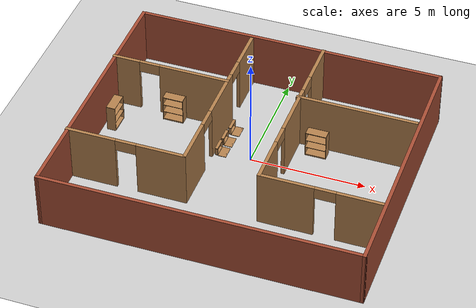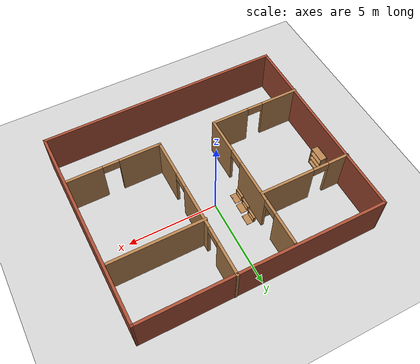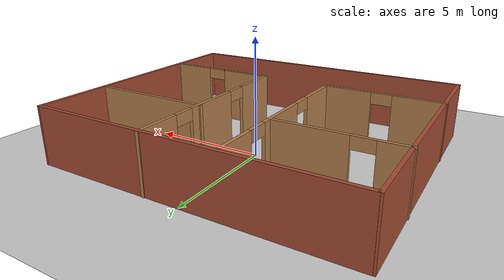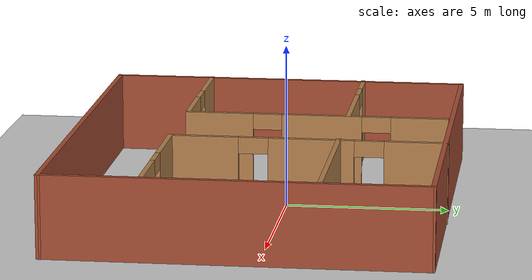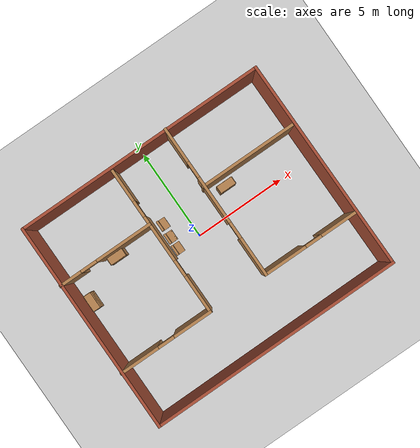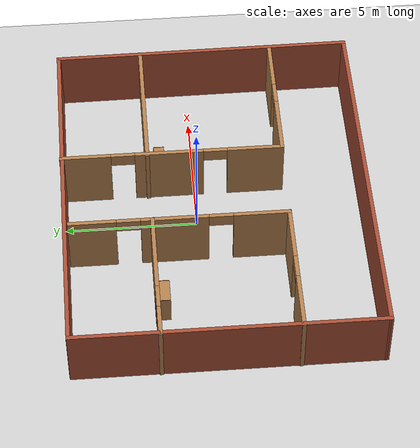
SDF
<sdf version="1.7">
 <world name="default">
  <light name="sun" type="directional">
   <pose>0 0 10 0 -0 0</pose>
   <diffuse>0.8 0.8 0.8 1</diffuse>
   <specular>0.2 0.2 0.2 1</specular>
   <attenuation>
    <range>1000</range>
    <constant>0.9</constant>
    <linear>0.01</linear>
    <quadratic>0.001</quadratic>
   </attenuation>
   <direction>-0.5 0.1 -0.9</direction>
   <spot><inner_angle>0</inner_angle><outer_angle>0</outer_angle><falloff>0</falloff></spot>
  </light>
  <model name="ground_plane">
   <static>1</static>
   <link name="link">
    <collision name="collision">
     <geometry><plane><normal>0 0 1</normal><size>100 100</size></plane></geometry>
     <surface><friction><ode><mu>100</mu><mu2>50</mu2></ode></friction></surface>
    </collision>
    <visual name="visual">
     <cast_shadows>0</cast_shadows>
     <geometry><plane><normal>0 0 1</normal><size>100 100</size></plane></geometry>
     <material>
      <script><uri>file://media/materials/scripts/gazebo.material</uri><name>Gazebo/Grey</name></script>
     </material>
    </visual>
   </link>
  </model>
  <gravity>0 0 -9.8</gravity>
  <magnetic_field>6e-06 2.3e-05 -4.2e-05</magnetic_field>
  <atmosphere type="adiabatic"/>
  <physics type="ode">
   <max_step_size>0.001</max_step_size>
   <real_time_factor>1</real_time_factor>
   <real_time_update_rate>1000</real_time_update_rate>
  </physics>
  <scene><ambient>0.4 0.4 0.4 1</ambient><background>0.7 0.7 0.7 1</background><shadows>1</shadows></scene>
  <audio><device>default</device></audio>
  <spherical_coordinates>
   <surface_model>EARTH_WGS84</surface_model>
   <latitude_deg>0</latitude_deg>
   <longitude_deg>0</longitude_deg>
   <elevation>0</elevation>
   <heading_deg>0</heading_deg>
  </spherical_coordinates>
  <model name="my_floor">
   <pose>0.02232 -0.693729 0 0 -0 0</pose>
   <link name="Wall_0">
    <collision name="Wall_0_Collision">
     <geometry><box><size>11.5 0.15 2.5</size></box></geometry>
     <pose>0 0 1.25 0 -0 0</pose>
    </collision>
    <visual name="Wall_0_Visual">
     <pose>0 0 1.25 0 -0 0</pose>
     <geometry><box><size>11.5 0.15 2.5</size></box></geometry>
     <material>
      <script><uri>file://media/materials/scripts/gazebo.material</uri><name>Gazebo/Bricks</name></script>
      <ambient>1 1 1 1</ambient>
     </material>
     <meta><layer>0</layer></meta>
    </visual>
    <pose>-6.73752 -0.018817 0 0 -0 -1.5708</pose>
   </link>
   <link name="Wall_10">
    <pose>-4.22447 2.43579 0 0 -0 0</pose>
    <visual name="Wall_10_Visual_0">
     <pose>-2.00796 0 1.25 0 -0 0</pose>
     <geometry><box><size>1.23409 0.15 2.5</size></box></geometry>
     <material>
      <script><uri>file://media/materials/scripts/gazebo.material</uri><name>Gazebo/Wood</name></script>
      <ambient>1 1 1 1</ambient>
     </material>
     <meta><layer>0</layer></meta>
    </visual>
    <collision name="Wall_10_Collision_0">
     <geometry><box><size>1.23409 0.15 2.5</size></box></geometry>
     <pose>-2.00796 0 1.25 0 -0 0</pose>
    </collision>
    <visual name="Wall_10_Visual_1">
     <pose>1.06704 0 1.25 0 -0 0</pose>
     <geometry><box><size>3.11592 0.15 2.5</size></box></geometry>
     <material>
      <script><uri>file://media/materials/scripts/gazebo.material</uri><name>Gazebo/Wood</name></script>
      <ambient>1 1 1 1</ambient>
     </material>
     <meta><layer>0</layer></meta>
    </visual>
    <collision name="Wall_10_Collision_1">
     <geometry><box><size>3.11592 0.15 2.5</size></box></geometry>
     <pose>1.06704 0 1.25 0 -0 0</pose>
    </collision>
    <visual name="Wall_10_Visual_2">
     <pose>-0.940915 0 2.25 0 -0 0</pose>
     <geometry><box><size>0.9 0.15 0.5</size></box></geometry>
     <material>
      <script><uri>file://media/materials/scripts/gazebo.material</uri><name>Gazebo/Wood</name></script>
      <ambient>1 1 1 1</ambient>
     </material>
     <meta><layer>0</layer></meta>
    </visual>
    <collision name="Wall_10_Collision_2">
     <geometry><box><size>0.9 0.15 0.5</size></box></geometry>
     <pose>-0.940915 0 2.25 0 -0 0</pose>
    </collision>
   </link>
   <link name="Wall_12">
    <pose>1.51232 1.51919 0 0 -0 -1.5708</pose>
    <visual name="Wall_12_Visual_0">
     <pose>-3.28097 0 1.25 0 -0 0</pose>
     <geometry><box><size>1.93806 0.15 2.5</size></box></geometry>
     <material>
      <script><uri>file://media/materials/scripts/gazebo.material</uri><name>Gazebo/Wood</name></script>
      <ambient>1 1 1 1</ambient>
     </material>
     <meta><layer>0</layer></meta>
    </visual>
    <collision name="Wall_12_Collision_0">
     <geometry><box><size>1.93806 0.15 2.5</size></box></geometry>
     <pose>-3.28097 0 1.25 0 -0 0</pose>
    </collision>
    <visual name="Wall_12_Visual_1">
     <pose>-0.112058 0 1.25 0 -0 0</pose>
     <geometry><box><size>2.59976 0.15 2.5</size></box></geometry>
     <material>
      <script><uri>file://media/materials/scripts/gazebo.material</uri><name>Gazebo/Wood</name></script>
      <ambient>1 1 1 1</ambient>
     </material>
     <meta><layer>0</layer></meta>
    </visual>
    <collision name="Wall_12_Collision_1">
     <geometry><box><size>2.59976 0.15 2.5</size></box></geometry>
     <pose>-0.112058 0 1.25 0 -0 0</pose>
    </collision>
    <visual name="Wall_12_Visual_2">
     <pose>3.16891 0 1.25 0 -0 0</pose>
     <geometry><box><size>2.16218 0.15 2.5</size></box></geometry>
     <material>
      <script><uri>file://media/materials/scripts/gazebo.material</uri><name>Gazebo/Wood</name></script>
      <ambient>1 1 1 1</ambient>
     </material>
     <meta><layer>0</layer></meta>
    </visual>
    <collision name="Wall_12_Collision_2">
     <geometry><box><size>2.16218 0.15 2.5</size></box></geometry>
     <pose>3.16891 0 1.25 0 -0 0</pose>
    </collision>
    <visual name="Wall_12_Visual_3">
     <pose>-1.86194 0 2.25 0 -0 0</pose>
     <geometry><box><size>0.9 0.15 0.5</size></box></geometry>
     <material>
      <script><uri>file://media/materials/scripts/gazebo.material</uri><name>Gazebo/Wood</name></script>
      <ambient>1 1 1 1</ambient>
     </material>
     <meta><layer>0</layer></meta>
    </visual>
    <collision name="Wall_12_Collision_3">
     <geometry><box><size>0.9 0.15 0.5</size></box></geometry>
     <pose>-1.86194 0 2.25 0 -0 0</pose>
    </collision>
    <visual name="Wall_12_Visual_4">
     <pose>1.63782 0 2.25 0 -0 0</pose>
     <geometry><box><size>0.9 0.15 0.5</size></box></geometry>
     <material>
      <script><uri>file://media/materials/scripts/gazebo.material</uri><name>Gazebo/Wood</name></script>
      <ambient>1 1 1 1</ambient>
     </material>
     <meta><layer>0</layer></meta>
    </visual>
    <collision name="Wall_12_Collision_4">
     <geometry><box><size>0.9 0.15 0.5</size></box></geometry>
     <pose>1.63782 0 2.25 0 -0 0</pose>
    </collision>
   </link>
   <link name="Wall_13">
    <pose>4.06233 -2.65582 0 0 -0 0</pose>
    <visual name="Wall_13_Visual_0">
     <pose>-1.43472 0 1.25 0 -0 0</pose>
     <geometry><box><size>2.38056 0.15 2.5</size></box></geometry>
     <material>
      <script><uri>file://media/materials/scripts/gazebo.material</uri><name>Gazebo/Wood</name></script>
      <ambient>1 1 1 1</ambient>
     </material>
     <meta><layer>0</layer></meta>
    </visual>
    <collision name="Wall_13_Collision_0">
     <geometry><box><size>2.38056 0.15 2.5</size></box></geometry>
     <pose>-1.43472 0 1.25 0 -0 0</pose>
    </collision>
    <visual name="Wall_13_Visual_1">
     <pose>1.64028 0 1.25 0 -0 0</pose>
     <geometry><box><size>1.96944 0.15 2.5</size></box></geometry>
     <material>
      <script><uri>file://media/materials/scripts/gazebo.material</uri><name>Gazebo/Wood</name></script>
      <ambient>1 1 1 1</ambient>
     </material>
     <meta><layer>0</layer></meta>
    </visual>
    <collision name="Wall_13_Collision_1">
     <geometry><box><size>1.96944 0.15 2.5</size></box></geometry>
     <pose>1.64028 0 1.25 0 -0 0</pose>
    </collision>
    <visual name="Wall_13_Visual_2">
     <pose>0.205559 0 2.25 0 -0 0</pose>
     <geometry><box><size>0.9 0.15 0.5</size></box></geometry>
     <material>
      <script><uri>file://media/materials/scripts/gazebo.material</uri><name>Gazebo/Wood</name></script>
      <ambient>1 1 1 1</ambient>
     </material>
     <meta><layer>0</layer></meta>
    </visual>
    <collision name="Wall_13_Collision_2">
     <geometry><box><size>0.9 0.15 0.5</size></box></geometry>
     <pose>0.205559 0 2.25 0 -0 0</pose>
    </collision>
   </link>
   <link name="Wall_15">
    <collision name="Wall_15_Collision">
     <geometry><box><size>5.25 0.15 2.5</size></box></geometry>
     <pose>0 0 1.25 0 -0 0</pose>
    </collision>
    <visual name="Wall_15_Visual">
     <pose>0 0 1.25 0 -0 0</pose>
     <geometry><box><size>5.25 0.15 2.5</size></box></geometry>
     <material>
      <script><uri>file://media/materials/scripts/gazebo.material</uri><name>Gazebo/Wood</name></script>
      <ambient>1 1 1 1</ambient>
     </material>
     <meta><layer>0</layer></meta>
    </visual>
    <pose>4.00198 2.4559 0 0 -0 0</pose>
   </link>
   <link name="Wall_2">
    <collision name="Wall_2_Collision">
     <geometry><box><size>13.6616 0.15 2.5</size></box></geometry>
     <pose>0 0 1.25 0 -0 0</pose>
    </collision>
    <visual name="Wall_2_Visual">
     <pose>0 0 1.25 0 -0 0</pose>
     <geometry><box><size>13.6616 0.15 2.5</size></box></geometry>
     <material>
      <script><uri>file://media/materials/scripts/gazebo.material</uri><name>Gazebo/Bricks</name></script>
      <ambient>1 1 1 1</ambient>
     </material>
     <meta><layer>0</layer></meta>
    </visual>
    <pose>0.018214 -5.66049 0 0 -0 0.004933</pose>
   </link>
   <link name="Wall_3">
    <collision name="Wall_3_Collision">
     <geometry><box><size>11.446 0.15 2.5</size></box></geometry>
     <pose>0 0 1.25 0 -0 0</pose>
    </collision>
    <visual name="Wall_3_Visual">
     <pose>0 0 1.25 0 -0 0</pose>
     <geometry><box><size>11.446 0.15 2.5</size></box></geometry>
     <material>
      <script><uri>file://media/materials/scripts/gazebo.material</uri><name>Gazebo/Bricks</name></script>
      <ambient>1 1 1 1</ambient>
     </material>
     <meta><layer>0</layer></meta>
    </visual>
    <pose>6.73451 0.020605 0 0 -0 1.57778</pose>
   </link>
   <link name="Wall_4">
    <collision name="Wall_4_Collision">
     <geometry><box><size>13.5 0.15 2.5</size></box></geometry>
     <pose>0 0 1.25 0 -0 0</pose>
    </collision>
    <visual name="Wall_4_Visual">
     <pose>0 0 1.25 0 -0 0</pose>
     <geometry><box><size>13.5 0.15 2.5</size></box></geometry>
     <material>
      <script><uri>file://media/materials/scripts/gazebo.material</uri><name>Gazebo/Bricks</name></script>
      <ambient>1 1 1 1</ambient>
     </material>
     <meta><layer>0</layer></meta>
    </visual>
    <pose>0.020073 5.66837 0 0 -0 3.14159</pose>
   </link>
   <link name="Wall_6">
    <pose>-4.21694 -2.61238 0 0 -0 0</pose>
    <visual name="Wall_6_Visual_0">
     <pose>-1.52899 0 1.25 0 -0 0</pose>
     <geometry><box><size>2.19201 0.15 2.5</size></box></geometry>
     <material>
      <script><uri>file://media/materials/scripts/gazebo.material</uri><name>Gazebo/Wood</name></script>
      <ambient>1 1 1 1</ambient>
     </material>
     <meta><layer>0</layer></meta>
    </visual>
    <collision name="Wall_6_Collision_0">
     <geometry><box><size>2.19201 0.15 2.5</size></box></geometry>
     <pose>-1.52899 0 1.25 0 -0 0</pose>
    </collision>
    <visual name="Wall_6_Visual_1">
     <pose>1.54601 0 1.25 0 -0 0</pose>
     <geometry><box><size>2.15799 0.15 2.5</size></box></geometry>
     <material>
      <script><uri>file://media/materials/scripts/gazebo.material</uri><name>Gazebo/Wood</name></script>
      <ambient>1 1 1 1</ambient>
     </material>
     <meta><layer>0</layer></meta>
    </visual>
    <collision name="Wall_6_Collision_1">
     <geometry><box><size>2.15799 0.15 2.5</size></box></geometry>
     <pose>1.54601 0 1.25 0 -0 0</pose>
    </collision>
    <visual name="Wall_6_Visual_2">
     <pose>0.017012 0 2.25 0 -0 0</pose>
     <geometry><box><size>0.9 0.15 0.5</size></box></geometry>
     <material>
      <script><uri>file://media/materials/scripts/gazebo.material</uri><name>Gazebo/Wood</name></script>
      <ambient>1 1 1 1</ambient>
     </material>
     <meta><layer>0</layer></meta>
    </visual>
    <collision name="Wall_6_Collision_2">
     <geometry><box><size>0.9 0.15 0.5</size></box></geometry>
     <pose>0.017012 0 2.25 0 -0 0</pose>
    </collision>
   </link>
   <link name="Wall_8">
    <pose>-1.66694 1.43762 0 0 -0 1.5708</pose>
    <visual name="Wall_8_Visual_0">
     <pose>-3.05557 0 1.25 0 -0 0</pose>
     <geometry><box><size>2.13886 0.15 2.5</size></box></geometry>
     <material>
      <script><uri>file://media/materials/scripts/gazebo.material</uri><name>Gazebo/Wood</name></script>
      <ambient>1 1 1 1</ambient>
     </material>
     <meta><layer>0</layer></meta>
    </visual>
    <collision name="Wall_8_Collision_0">
     <geometry><box><size>2.13886 0.15 2.5</size></box></geometry>
     <pose>-3.05557 0 1.25 0 -0 0</pose>
    </collision>
    <visual name="Wall_8_Visual_1">
     <pose>0.173514 0 1.25 0 -0 0</pose>
     <geometry><box><size>2.51931 0.15 2.5</size></box></geometry>
     <material>
      <script><uri>file://media/materials/scripts/gazebo.material</uri><name>Gazebo/Wood</name></script>
      <ambient>1 1 1 1</ambient>
     </material>
     <meta><layer>0</layer></meta>
    </visual>
    <collision name="Wall_8_Collision_1">
     <geometry><box><size>2.51931 0.15 2.5</size></box></geometry>
     <pose>0.173514 0 1.25 0 -0 0</pose>
    </collision>
    <visual name="Wall_8_Visual_2">
     <pose>3.22908 0 1.25 0 -0 0</pose>
     <geometry><box><size>1.79183 0.15 2.5</size></box></geometry>
     <material>
      <script><uri>file://media/materials/scripts/gazebo.material</uri><name>Gazebo/Wood</name></script>
      <ambient>1 1 1 1</ambient>
     </material>
     <meta><layer>0</layer></meta>
    </visual>
    <collision name="Wall_8_Collision_2">
     <geometry><box><size>1.79183 0.15 2.5</size></box></geometry>
     <pose>3.22908 0 1.25 0 -0 0</pose>
    </collision>
    <visual name="Wall_8_Visual_3">
     <pose>-1.53614 0 2.25 0 -0 0</pose>
     <geometry><box><size>0.9 0.15 0.5</size></box></geometry>
     <material>
      <script><uri>file://media/materials/scripts/gazebo.material</uri><name>Gazebo/Wood</name></script>
      <ambient>1 1 1 1</ambient>
     </material>
     <meta><layer>0</layer></meta>
    </visual>
    <collision name="Wall_8_Collision_3">
     <geometry><box><size>0.9 0.15 0.5</size></box></geometry>
     <pose>-1.53614 0 2.25 0 -0 0</pose>
    </collision>
    <visual name="Wall_8_Visual_4">
     <pose>1.88317 0 2.25 0 -0 0</pose>
     <geometry><box><size>0.9 0.15 0.5</size></box></geometry>
     <material>
      <script><uri>file://media/materials/scripts/gazebo.material</uri><name>Gazebo/Wood</name></script>
      <ambient>1 1 1 1</ambient>
     </material>
     <meta><layer>0</layer></meta>
    </visual>
    <collision name="Wall_8_Collision_4">
     <geometry><box><size>0.9 0.15 0.5</size></box></geometry>
     <pose>1.88317 0 2.25 0 -0 0</pose>
    </collision>
   </link>
   <static>1</static>
  </model>
  <model name="bookshelf">
   <static>1</static>
   <link name="link">
    <inertial><mass>1</mass></inertial>
    <collision name="back">
     <pose>0 0.005 0.6 0 -0 0</pose>
     <geometry><box><size>0.9 0.01 1.2</size></box></geometry>
    </collision>
    <visual name="visual1">
     <pose>0 0.005 0.6 0 -0 0</pose>
     <geometry><box><size>0.9 0.01 1.2</size></box></geometry>
     <material>
      <script><uri>file://media/materials/scripts/gazebo.material</uri><name>Gazebo/Wood</name></script>
     </material>
    </visual>
    <collision name="left_side">
     <pose>0.45 -0.195 0.6 0 -0 0</pose>
     <geometry><box><size>0.02 0.4 1.2</size></box></geometry>
    </collision>
    <visual name="visual2">
     <pose>0.45 -0.195 0.6 0 -0 0</pose>
     <geometry><box><size>0.02 0.4 1.2</size></box></geometry>
     <material>
      <script><uri>file://media/materials/scripts/gazebo.material</uri><name>Gazebo/Wood</name></script>
     </material>
    </visual>
    <collision name="right_side">
     <pose>-0.45 -0.195 0.6 0 -0 0</pose>
     <geometry><box><size>0.02 0.4 1.2</size></box></geometry>
    </collision>
    <visual name="visual3">
     <pose>-0.45 -0.195 0.6 0 -0 0</pose>
     <geometry><box><size>0.02 0.4 1.2</size></box></geometry>
     <material>
      <script><uri>file://media/materials/scripts/gazebo.material</uri><name>Gazebo/Wood</name></script>
     </material>
    </visual>
    <collision name="bottom">
     <pose>0 -0.195 0.03 0 -0 0</pose>
     <geometry><box><size>0.88 0.4 0.06</size></box></geometry>
    </collision>
    <visual name="visual4">
     <pose>0 -0.195 0.03 0 -0 0</pose>
     <geometry><box><size>0.88 0.4 0.06</size></box></geometry>
     <material>
      <script><uri>file://media/materials/scripts/gazebo.material</uri><name>Gazebo/Wood</name></script>
     </material>
    </visual>
    <collision name="top">
     <pose>0 -0.195 1.19 0 -0 0</pose>
     <geometry><box><size>0.88 0.4 0.02</size></box></geometry>
    </collision>
    <visual name="visual5">
     <pose>0 -0.195 1.19 0 -0 0</pose>
     <geometry><box><size>0.88 0.4 0.02</size></box></geometry>
     <material>
      <script><uri>file://media/materials/scripts/gazebo.material</uri><name>Gazebo/Wood</name></script>
     </material>
    </visual>
    <collision name="low_shelf">
     <pose>0 -0.195 0.43 0 -0 0</pose>
     <geometry><box><size>0.88 0.4 0.02</size></box></geometry>
    </collision>
    <visual name="visual6">
     <pose>0 -0.195 0.43 0 -0 0</pose>
     <geometry><box><size>0.88 0.4 0.02</size></box></geometry>
     <material>
      <script><uri>file://media/materials/scripts/gazebo.material</uri><name>Gazebo/Wood</name></script>
     </material>
    </visual>
    <collision name="high_shelf">
     <pose>0 -0.195 0.8 0 -0 0</pose>
     <geometry><box><size>0.88 0.4 0.02</size></box></geometry>
    </collision>
    <visual name="visual7">
     <pose>0 -0.195 0.8 0 -0 0</pose>
     <geometry><box><size>0.88 0.4 0.02</size></box></geometry>
     <material>
      <script><uri>file://media/materials/scripts/gazebo.material</uri><name>Gazebo/Wood</name></script>
     </material>
    </visual>
   </link>
   <pose>-3.96036 1.65128 0 0 -0 0</pose>
  </model>
  <model name="bookshelf_0">
   <static>1</static>
   <link name="link">
    <inertial><mass>1</mass></inertial>
    <collision name="back">
     <pose>0 0.005 0.6 0 -0 0</pose>
     <geometry><box><size>0.9 0.01 1.2</size></box></geometry>
    </collision>
    <visual name="visual1">
     <pose>0 0.005 0.6 0 -0 0</pose>
     <geometry><box><size>0.9 0.01 1.2</size></box></geometry>
     <material>
      <script><uri>file://media/materials/scripts/gazebo.material</uri><name>Gazebo/Wood</name></script>
     </material>
    </visual>
    <collision name="left_side">
     <pose>0.45 -0.195 0.6 0 -0 0</pose>
     <geometry><box><size>0.02 0.4 1.2</size></box></geometry>
    </collision>
    <visual name="visual2">
     <pose>0.45 -0.195 0.6 0 -0 0</pose>
     <geometry><box><size>0.02 0.4 1.2</size></box></geometry>
     <material>
      <script><uri>file://media/materials/scripts/gazebo.material</uri><name>Gazebo/Wood</name></script>
     </material>
    </visual>
    <collision name="right_side">
     <pose>-0.45 -0.195 0.6 0 -0 0</pose>
     <geometry><box><size>0.02 0.4 1.2</size></box></geometry>
    </collision>
    <visual name="visual3">
     <pose>-0.45 -0.195 0.6 0 -0 0</pose>
     <geometry><box><size>0.02 0.4 1.2</size></box></geometry>
     <material>
      <script><uri>file://media/materials/scripts/gazebo.material</uri><name>Gazebo/Wood</name></script>
     </material>
    </visual>
    <collision name="bottom">
     <pose>0 -0.195 0.03 0 -0 0</pose>
     <geometry><box><size>0.88 0.4 0.06</size></box></geometry>
    </collision>
    <visual name="visual4">
     <pose>0 -0.195 0.03 0 -0 0</pose>
     <geometry><box><size>0.88 0.4 0.06</size></box></geometry>
     <material>
      <script><uri>file://media/materials/scripts/gazebo.material</uri><name>Gazebo/Wood</name></script>
     </material>
    </visual>
    <collision name="top">
     <pose>0 -0.195 1.19 0 -0 0</pose>
     <geometry><box><size>0.88 0.4 0.02</size></box></geometry>
    </collision>
    <visual name="visual5">
     <pose>0 -0.195 1.19 0 -0 0</pose>
     <geometry><box><size>0.88 0.4 0.02</size></box></geometry>
     <material>
      <script><uri>file://media/materials/scripts/gazebo.material</uri><name>Gazebo/Wood</name></script>
     </material>
    </visual>
    <collision name="low_shelf">
     <pose>0 -0.195 0.43 0 -0 0</pose>
     <geometry><box><size>0.88 0.4 0.02</size></box></geometry>
    </collision>
    <visual name="visual6">
     <pose>0 -0.195 0.43 0 -0 0</pose>
     <geometry><box><size>0.88 0.4 0.02</size></box></geometry>
     <material>
      <script><uri>file://media/materials/scripts/gazebo.material</uri><name>Gazebo/Wood</name></script>
     </material>
    </visual>
    <collision name="high_shelf">
     <pose>0 -0.195 0.8 0 -0 0</pose>
     <geometry><box><size>0.88 0.4 0.02</size></box></geometry>
    </collision>
    <visual name="visual7">
     <pose>0 -0.195 0.8 0 -0 0</pose>
     <geometry><box><size>0.88 0.4 0.02</size></box></geometry>
     <material>
      <script><uri>file://media/materials/scripts/gazebo.material</uri><name>Gazebo/Wood</name></script>
     </material>
    </visual>
   </link>
   <pose>2.49515 1.47554 0 0 -0 0</pose>
  </model>
  <model name="bookshelf_1">
   <static>1</static>
   <link name="link">
    <inertial><mass>1</mass></inertial>
    <collision name="back">
     <pose>0 0.005 0.6 0 -0 0</pose>
     <geometry><box><size>0.9 0.01 1.2</size></box></geometry>
    </collision>
    <visual name="visual1">
     <pose>0 0.005 0.6 0 -0 0</pose>
     <geometry><box><size>0.9 0.01 1.2</size></box></geometry>
     <material>
      <script><uri>file://media/materials/scripts/gazebo.material</uri><name>Gazebo/Wood</name></script>
     </material>
    </visual>
    <collision name="left_side">
     <pose>0.45 -0.195 0.6 0 -0 0</pose>
     <geometry><box><size>0.02 0.4 1.2</size></box></geometry>
    </collision>
    <visual name="visual2">
     <pose>0.45 -0.195 0.6 0 -0 0</pose>
     <geometry><box><size>0.02 0.4 1.2</size></box></geometry>
     <material>
      <script><uri>file://media/materials/scripts/gazebo.material</uri><name>Gazebo/Wood</name></script>
     </material>
    </visual>
    <collision name="right_side">
     <pose>-0.45 -0.195 0.6 0 -0 0</pose>
     <geometry><box><size>0.02 0.4 1.2</size></box></geometry>
    </collision>
    <visual name="visual3">
     <pose>-0.45 -0.195 0.6 0 -0 0</pose>
     <geometry><box><size>0.02 0.4 1.2</size></box></geometry>
     <material>
      <script><uri>file://media/materials/scripts/gazebo.material</uri><name>Gazebo/Wood</name></script>
     </material>
    </visual>
    <collision name="bottom">
     <pose>0 -0.195 0.03 0 -0 0</pose>
     <geometry><box><size>0.88 0.4 0.06</size></box></geometry>
    </collision>
    <visual name="visual4">
     <pose>0 -0.195 0.03 0 -0 0</pose>
     <geometry><box><size>0.88 0.4 0.06</size></box></geometry>
     <material>
      <script><uri>file://media/materials/scripts/gazebo.material</uri><name>Gazebo/Wood</name></script>
     </material>
    </visual>
    <collision name="top">
     <pose>0 -0.195 1.19 0 -0 0</pose>
     <geometry><box><size>0.88 0.4 0.02</size></box></geometry>
    </collision>
    <visual name="visual5">
     <pose>0 -0.195 1.19 0 -0 0</pose>
     <geometry><box><size>0.88 0.4 0.02</size></box></geometry>
     <material>
      <script><uri>file://media/materials/scripts/gazebo.material</uri><name>Gazebo/Wood</name></script>
     </material>
    </visual>
    <collision name="low_shelf">
     <pose>0 -0.195 0.43 0 -0 0</pose>
     <geometry><box><size>0.88 0.4 0.02</size></box></geometry>
    </collision>
    <visual name="visual6">
     <pose>0 -0.195 0.43 0 -0 0</pose>
     <geometry><box><size>0.88 0.4 0.02</size></box></geometry>
     <material>
      <script><uri>file://media/materials/scripts/gazebo.material</uri><name>Gazebo/Wood</name></script>
     </material>
    </visual>
    <collision name="high_shelf">
     <pose>0 -0.195 0.8 0 -0 0</pose>
     <geometry><box><size>0.88 0.4 0.02</size></box></geometry>
    </collision>
    <visual name="visual7">
     <pose>0 -0.195 0.8 0 -0 0</pose>
     <geometry><box><size>0.88 0.4 0.02</size></box></geometry>
     <material>
      <script><uri>file://media/materials/scripts/gazebo.material</uri><name>Gazebo/Wood</name></script>
     </material>
    </visual>
   </link>
   <pose>-6.42193 0.312337 0 0 -0 1.56379</pose>
  </model>
  <model name="wooden_case">
   <link name="base">
    <pose>0 0 0.024 0 -0 0</pose>
    <inertial>
     <pose>-0.022184 0 0.171592 0 -0 0</pose>
     <mass>3.96264</mass>
     <inertia>
      <ixx>0.213536</ixx>
      <ixy>0</ixy>
      <ixz>0.000779377</ixz>
      <iyy>0.0708943</iyy>
      <iyz>0</iyz>
      <izz>0.154604</izz>
     </inertia>
    </inertial>
    <collision name="collision_back">
     <pose>-0.053975 0 0.1778 0 -0 0</pose>
     <geometry><box><size>0.01905 0.5461 0.3175</size></box></geometry>
     <surface>
      <contact>
       <poissons_ratio>0.347</poissons_ratio>
       <elastic_modulus>8.8e+09</elastic_modulus>
       <ode><kp>100000</kp><kd>100</kd><max_vel>100</max_vel><min_depth>0.001</min_depth></ode>
      </contact>
      <friction>
       <torsional>
        <coefficient>1</coefficient>
        <use_patch_radius>0</use_patch_radius>
        <surface_radius>0.01</surface_radius>
       </torsional>
      </friction>
     </surface>
    </collision>
    <visual name="visual_back">
     <pose>-0.053975 0 0.1778 0 -0 0</pose>
     <geometry><box><size>0.01905 0.5461 0.3175</size></box></geometry>
     <material>
      <script><uri>file://media/materials/scripts/gazebo.material</uri><name>Gazebo/Wood</name></script>
     </material>
    </visual>
    <collision name="collision_bottom">
     <pose>0 0 0.009525 0 -0 0</pose>
     <geometry><box><size>0.127 0.5842 0.01905</size></box></geometry>
     <surface>
      <contact>
       <poissons_ratio>0.347</poissons_ratio>
       <elastic_modulus>8.8e+09</elastic_modulus>
       <ode><kp>100000</kp><kd>100</kd><max_vel>100</max_vel><min_depth>0.001</min_depth></ode>
      </contact>
      <friction>
       <torsional>
        <coefficient>1</coefficient>
        <use_patch_radius>0</use_patch_radius>
        <surface_radius>0.01</surface_radius>
       </torsional>
      </friction>
     </surface>
    </collision>
    <visual name="visual_bottom">
     <pose>0 0 0.009525 0 -0 0</pose>
     <geometry><box><size>0.127 0.5842 0.01905</size></box></geometry>
     <material>
      <script><uri>file://media/materials/scripts/gazebo.material</uri><name>Gazebo/Wood</name></script>
     </material>
    </visual>
    <collision name="collision_top">
     <pose>0 0 0.346075 0 -0 0</pose>
     <geometry><box><size>0.127 0.5842 0.01905</size></box></geometry>
     <surface>
      <contact>
       <poissons_ratio>0.347</poissons_ratio>
       <elastic_modulus>8.8e+09</elastic_modulus>
       <ode><kp>100000</kp><kd>100</kd><max_vel>100</max_vel><min_depth>0.001</min_depth></ode>
      </contact>
      <friction>
       <torsional>
        <coefficient>1</coefficient>
        <use_patch_radius>0</use_patch_radius>
        <surface_radius>0.01</surface_radius>
       </torsional>
      </friction>
     </surface>
    </collision>
    <visual name="visual_top">
     <pose>0 0 0.346075 0 -0 0</pose>
     <geometry><box><size>0.127 0.5842 0.01905</size></box></geometry>
     <material>
      <script><uri>file://media/materials/scripts/gazebo.material</uri><name>Gazebo/Wood</name></script>
     </material>
    </visual>
    <collision name="collision_left">
     <pose>0 -0.282575 0.1778 0 -0 0</pose>
     <geometry><box><size>0.127 0.01905 0.3175</size></box></geometry>
     <surface>
      <contact>
       <poissons_ratio>0.347</poissons_ratio>
       <elastic_modulus>8.8e+09</elastic_modulus>
       <ode><kp>100000</kp><kd>100</kd><max_vel>100</max_vel><min_depth>0.001</min_depth></ode>
      </contact>
      <friction>
       <torsional>
        <coefficient>1</coefficient>
        <use_patch_radius>0</use_patch_radius>
        <surface_radius>0.01</surface_radius>
       </torsional>
      </friction>
     </surface>
    </collision>
    <visual name="visual_left">
     <pose>0 -0.282575 0.1778 0 -0 0</pose>
     <geometry><box><size>0.127 0.01905 0.3175</size></box></geometry>
     <material>
      <script><uri>file://media/materials/scripts/gazebo.material</uri><name>Gazebo/Wood</name></script>
     </material>
    </visual>
    <collision name="collision_right">
     <pose>0 0.282575 0.1778 0 -0 0</pose>
     <geometry><box><size>0.127 0.01905 0.3175</size></box></geometry>
     <surface>
      <contact>
       <poissons_ratio>0.347</poissons_ratio>
       <elastic_modulus>8.8e+09</elastic_modulus>
       <ode><kp>100000</kp><kd>100</kd><max_vel>100</max_vel><min_depth>0.001</min_depth></ode>
      </contact>
      <friction>
       <torsional>
        <coefficient>1</coefficient>
        <use_patch_radius>0</use_patch_radius>
        <surface_radius>0.01</surface_radius>
       </torsional>
      </friction>
     </surface>
    </collision>
    <visual name="visual_right">
     <pose>0 0.282575 0.1778 0 -0 0</pose>
     <geometry><box><size>0.127 0.01905 0.3175</size></box></geometry>
     <material>
      <script><uri>file://media/materials/scripts/gazebo.material</uri><name>Gazebo/Wood</name></script>
     </material>
    </visual>
    <collision name="collision_block_left">
     <pose>0.0095 -0.2151 -0.012 0 -0 0</pose>
     <geometry><box><size>0.108 0.05 0.024</size></box></geometry>
     <surface>
      <contact>
       <poissons_ratio>0.347</poissons_ratio>
       <elastic_modulus>8.8e+09</elastic_modulus>
       <ode><kp>100000</kp><kd>100</kd><max_vel>100</max_vel><min_depth>0.001</min_depth></ode>
      </contact>
      <friction>
       <torsional>
        <coefficient>1</coefficient>
        <use_patch_radius>0</use_patch_radius>
        <surface_radius>0.01</surface_radius>
       </torsional>
      </friction>
     </surface>
    </collision>
    <visual name="visual_block_left">
     <pose>0.0095 -0.2151 -0.012 0 -0 0</pose>
     <geometry><box><size>0.108 0.05 0.024</size></box></geometry>
     <material>
      <script><uri>file://media/materials/scripts/gazebo.material</uri><name>Gazebo/Wood</name></script>
     </material>
    </visual>
    <collision name="collision_block_right">
     <pose>0.0095 0.2151 -0.012 0 -0 0</pose>
     <geometry><box><size>0.108 0.05 0.024</size></box></geometry>
     <surface>
      <contact>
       <poissons_ratio>0.347</poissons_ratio>
       <elastic_modulus>8.8e+09</elastic_modulus>
       <ode><kp>100000</kp><kd>100</kd><max_vel>100</max_vel><min_depth>0.001</min_depth></ode>
      </contact>
      <friction>
       <torsional>
        <coefficient>1</coefficient>
        <use_patch_radius>0</use_patch_radius>
        <surface_radius>0.01</surface_radius>
       </torsional>
      </friction>
     </surface>
    </collision>
    <visual name="visual_block_right">
     <pose>0.0095 0.2151 -0.012 0 -0 0</pose>
     <geometry><box><size>0.108 0.05 0.024</size></box></geometry>
     <material>
      <script><uri>file://media/materials/scripts/gazebo.material</uri><name>Gazebo/Wood</name></script>
     </material>
    </visual>
   </link>
   <link name="lid">
    <pose>0.243775 0 0.009525 0 -0 0</pose>
    <inertial>
     <mass>1.97874</mass>
     <inertia>
      <ixx>0.0563367</ixx>
      <ixy>0</ixy>
      <ixz>0</ixz>
      <iyy>0.020911</iyy>
      <iyz>0</iyz>
      <izz>0.0771281</izz>
     </inertia>
    </inertial>
    <collision name="collision">
     <geometry><box><size>0.3556 0.5842 0.01905</size></box></geometry>
     <surface>
      <contact>
       <poissons_ratio>0.347</poissons_ratio>
       <elastic_modulus>8.8e+09</elastic_modulus>
       <ode><kp>100000</kp><kd>100</kd><max_vel>100</max_vel><min_depth>0.001</min_depth></ode>
      </contact>
      <friction>
       <torsional>
        <coefficient>1</coefficient>
        <use_patch_radius>0</use_patch_radius>
        <surface_radius>0.01</surface_radius>
       </torsional>
      </friction>
     </surface>
    </collision>
    <visual name="visual">
     <geometry><box><size>0.3556 0.5842 0.01905</size></box></geometry>
     <material>
      <script><uri>file://media/materials/scripts/gazebo.material</uri><name>Gazebo/Wood</name></script>
     </material>
    </visual>
    <visual name="tee_nut_1">
     <pose>0.122 -0.216 0 0 -0 0</pose>
     <geometry><cylinder><radius>0.00635</radius><length>0.0192405</length></cylinder></geometry>
     <material>
      <script><uri>file://media/materials/scripts/gazebo.material</uri><name>Gazebo/Grey</name></script>
     </material>
    </visual>
    <visual name="tee_nut_2">
     <pose>0.122 -0.088 0 0 -0 0</pose>
     <geometry><cylinder><radius>0.00635</radius><length>0.0192405</length></cylinder></geometry>
     <material>
      <script><uri>file://media/materials/scripts/gazebo.material</uri><name>Gazebo/Grey</name></script>
     </material>
    </visual>
    <visual name="tee_nut_3">
     <pose>0.122 0.088 0 0 -0 0</pose>
     <geometry><cylinder><radius>0.00635</radius><length>0.0192405</length></cylinder></geometry>
     <material>
      <script><uri>file://media/materials/scripts/gazebo.material</uri><name>Gazebo/Grey</name></script>
     </material>
    </visual>
    <visual name="tee_nut_4">
     <pose>0.122 0.216 0 0 -0 0</pose>
     <geometry><cylinder><radius>0.00635</radius><length>0.0192405</length></cylinder></geometry>
     <material>
      <script><uri>file://media/materials/scripts/gazebo.material</uri><name>Gazebo/Grey</name></script>
     </material>
    </visual>
   </link>
   <joint name="lid_hinge" type="revolute">
    <pose>-0.1778 0 0.01905 0 -0 0</pose>
    <parent>base</parent>
    <child>lid</child>
    <axis>
     <xyz>0 1 0</xyz>
     <limit><upper>0.523599</upper><lower>-1.5708</lower></limit>
     <dynamics><spring_reference>0</spring_reference><spring_stiffness>0</spring_stiffness></dynamics>
    </axis>
   </joint>
   <pose>-1.44827 0.093424 -0.001057 0 -0.000429 -1e-06</pose>
  </model>
  <model name="wooden_case_0">
   <link name="base">
    <pose>0 0 0.024 0 -0 0</pose>
    <inertial>
     <pose>-0.022184 0 0.171592 0 -0 0</pose>
     <mass>3.96264</mass>
     <inertia>
      <ixx>0.213536</ixx>
      <ixy>0</ixy>
      <ixz>0.000779377</ixz>
      <iyy>0.0708943</iyy>
      <iyz>0</iyz>
      <izz>0.154604</izz>
     </inertia>
    </inertial>
    <collision name="collision_back">
     <pose>-0.053975 0 0.1778 0 -0 0</pose>
     <geometry><box><size>0.01905 0.5461 0.3175</size></box></geometry>
     <surface>
      <contact>
       <poissons_ratio>0.347</poissons_ratio>
       <elastic_modulus>8.8e+09</elastic_modulus>
       <ode><kp>100000</kp><kd>100</kd><max_vel>100</max_vel><min_depth>0.001</min_depth></ode>
      </contact>
      <friction>
       <torsional>
        <coefficient>1</coefficient>
        <use_patch_radius>0</use_patch_radius>
        <surface_radius>0.01</surface_radius>
       </torsional>
      </friction>
     </surface>
    </collision>
    <visual name="visual_back">
     <pose>-0.053975 0 0.1778 0 -0 0</pose>
     <geometry><box><size>0.01905 0.5461 0.3175</size></box></geometry>
     <material>
      <script><uri>file://media/materials/scripts/gazebo.material</uri><name>Gazebo/Wood</name></script>
     </material>
    </visual>
    <collision name="collision_bottom">
     <pose>0 0 0.009525 0 -0 0</pose>
     <geometry><box><size>0.127 0.5842 0.01905</size></box></geometry>
     <surface>
      <contact>
       <poissons_ratio>0.347</poissons_ratio>
       <elastic_modulus>8.8e+09</elastic_modulus>
       <ode><kp>100000</kp><kd>100</kd><max_vel>100</max_vel><min_depth>0.001</min_depth></ode>
      </contact>
      <friction>
       <torsional>
        <coefficient>1</coefficient>
        <use_patch_radius>0</use_patch_radius>
        <surface_radius>0.01</surface_radius>
       </torsional>
      </friction>
     </surface>
    </collision>
    <visual name="visual_bottom">
     <pose>0 0 0.009525 0 -0 0</pose>
     <geometry><box><size>0.127 0.5842 0.01905</size></box></geometry>
     <material>
      <script><uri>file://media/materials/scripts/gazebo.material</uri><name>Gazebo/Wood</name></script>
     </material>
    </visual>
    <collision name="collision_top">
     <pose>0 0 0.346075 0 -0 0</pose>
     <geometry><box><size>0.127 0.5842 0.01905</size></box></geometry>
     <surface>
      <contact>
       <poissons_ratio>0.347</poissons_ratio>
       <elastic_modulus>8.8e+09</elastic_modulus>
       <ode><kp>100000</kp><kd>100</kd><max_vel>100</max_vel><min_depth>0.001</min_depth></ode>
      </contact>
      <friction>
       <torsional>
        <coefficient>1</coefficient>
        <use_patch_radius>0</use_patch_radius>
        <surface_radius>0.01</surface_radius>
       </torsional>
      </friction>
     </surface>
    </collision>
    <visual name="visual_top">
     <pose>0 0 0.346075 0 -0 0</pose>
     <geometry><box><size>0.127 0.5842 0.01905</size></box></geometry>
     <material>
      <script><uri>file://media/materials/scripts/gazebo.material</uri><name>Gazebo/Wood</name></script>
     </material>
    </visual>
    <collision name="collision_left">
     <pose>0 -0.282575 0.1778 0 -0 0</pose>
     <geometry><box><size>0.127 0.01905 0.3175</size></box></geometry>
     <surface>
      <contact>
       <poissons_ratio>0.347</poissons_ratio>
       <elastic_modulus>8.8e+09</elastic_modulus>
       <ode><kp>100000</kp><kd>100</kd><max_vel>100</max_vel><min_depth>0.001</min_depth></ode>
      </contact>
      <friction>
       <torsional>
        <coefficient>1</coefficient>
        <use_patch_radius>0</use_patch_radius>
        <surface_radius>0.01</surface_radius>
       </torsional>
      </friction>
     </surface>
    </collision>
    <visual name="visual_left">
     <pose>0 -0.282575 0.1778 0 -0 0</pose>
     <geometry><box><size>0.127 0.01905 0.3175</size></box></geometry>
     <material>
      <script><uri>file://media/materials/scripts/gazebo.material</uri><name>Gazebo/Wood</name></script>
     </material>
    </visual>
    <collision name="collision_right">
     <pose>0 0.282575 0.1778 0 -0 0</pose>
     <geometry><box><size>0.127 0.01905 0.3175</size></box></geometry>
     <surface>
      <contact>
       <poissons_ratio>0.347</poissons_ratio>
       <elastic_modulus>8.8e+09</elastic_modulus>
       <ode><kp>100000</kp><kd>100</kd><max_vel>100</max_vel><min_depth>0.001</min_depth></ode>
      </contact>
      <friction>
       <torsional>
        <coefficient>1</coefficient>
        <use_patch_radius>0</use_patch_radius>
        <surface_radius>0.01</surface_radius>
       </torsional>
      </friction>
     </surface>
    </collision>
    <visual name="visual_right">
     <pose>0 0.282575 0.1778 0 -0 0</pose>
     <geometry><box><size>0.127 0.01905 0.3175</size></box></geometry>
     <material>
      <script><uri>file://media/materials/scripts/gazebo.material</uri><name>Gazebo/Wood</name></script>
     </material>
    </visual>
    <collision name="collision_block_left">
     <pose>0.0095 -0.2151 -0.012 0 -0 0</pose>
     <geometry><box><size>0.108 0.05 0.024</size></box></geometry>
     <surface>
      <contact>
       <poissons_ratio>0.347</poissons_ratio>
       <elastic_modulus>8.8e+09</elastic_modulus>
       <ode><kp>100000</kp><kd>100</kd><max_vel>100</max_vel><min_depth>0.001</min_depth></ode>
      </contact>
      <friction>
       <torsional>
        <coefficient>1</coefficient>
        <use_patch_radius>0</use_patch_radius>
        <surface_radius>0.01</surface_radius>
       </torsional>
      </friction>
     </surface>
    </collision>
    <visual name="visual_block_left">
     <pose>0.0095 -0.2151 -0.012 0 -0 0</pose>
     <geometry><box><size>0.108 0.05 0.024</size></box></geometry>
     <material>
      <script><uri>file://media/materials/scripts/gazebo.material</uri><name>Gazebo/Wood</name></script>
     </material>
    </visual>
    <collision name="collision_block_right">
     <pose>0.0095 0.2151 -0.012 0 -0 0</pose>
     <geometry><box><size>0.108 0.05 0.024</size></box></geometry>
     <surface>
      <contact>
       <poissons_ratio>0.347</poissons_ratio>
       <elastic_modulus>8.8e+09</elastic_modulus>
       <ode><kp>100000</kp><kd>100</kd><max_vel>100</max_vel><min_depth>0.001</min_depth></ode>
      </contact>
      <friction>
       <torsional>
        <coefficient>1</coefficient>
        <use_patch_radius>0</use_patch_radius>
        <surface_radius>0.01</surface_radius>
       </torsional>
      </friction>
     </surface>
    </collision>
    <visual name="visual_block_right">
     <pose>0.0095 0.2151 -0.012 0 -0 0</pose>
     <geometry><box><size>0.108 0.05 0.024</size></box></geometry>
     <material>
      <script><uri>file://media/materials/scripts/gazebo.material</uri><name>Gazebo/Wood</name></script>
     </material>
    </visual>
   </link>
   <link name="lid">
    <pose>0.243775 0 0.009525 0 -0 0</pose>
    <inertial>
     <mass>1.97874</mass>
     <inertia>
      <ixx>0.0563367</ixx>
      <ixy>0</ixy>
      <ixz>0</ixz>
      <iyy>0.020911</iyy>
      <iyz>0</iyz>
      <izz>0.0771281</izz>
     </inertia>
    </inertial>
    <collision name="collision">
     <geometry><box><size>0.3556 0.5842 0.01905</size></box></geometry>
     <surface>
      <contact>
       <poissons_ratio>0.347</poissons_ratio>
       <elastic_modulus>8.8e+09</elastic_modulus>
       <ode><kp>100000</kp><kd>100</kd><max_vel>100</max_vel><min_depth>0.001</min_depth></ode>
      </contact>
      <friction>
       <torsional>
        <coefficient>1</coefficient>
        <use_patch_radius>0</use_patch_radius>
        <surface_radius>0.01</surface_radius>
       </torsional>
      </friction>
     </surface>
    </collision>
    <visual name="visual">
     <geometry><box><size>0.3556 0.5842 0.01905</size></box></geometry>
     <material>
      <script><uri>file://media/materials/scripts/gazebo.material</uri><name>Gazebo/Wood</name></script>
     </material>
    </visual>
    <visual name="tee_nut_1">
     <pose>0.122 -0.216 0 0 -0 0</pose>
     <geometry><cylinder><radius>0.00635</radius><length>0.0192405</length></cylinder></geometry>
     <material>
      <script><uri>file://media/materials/scripts/gazebo.material</uri><name>Gazebo/Grey</name></script>
     </material>
    </visual>
    <visual name="tee_nut_2">
     <pose>0.122 -0.088 0 0 -0 0</pose>
     <geometry><cylinder><radius>0.00635</radius><length>0.0192405</length></cylinder></geometry>
     <material>
      <script><uri>file://media/materials/scripts/gazebo.material</uri><name>Gazebo/Grey</name></script>
     </material>
    </visual>
    <visual name="tee_nut_3">
     <pose>0.122 0.088 0 0 -0 0</pose>
     <geometry><cylinder><radius>0.00635</radius><length>0.0192405</length></cylinder></geometry>
     <material>
      <script><uri>file://media/materials/scripts/gazebo.material</uri><name>Gazebo/Grey</name></script>
     </material>
    </visual>
    <visual name="tee_nut_4">
     <pose>0.122 0.216 0 0 -0 0</pose>
     <geometry><cylinder><radius>0.00635</radius><length>0.0192405</length></cylinder></geometry>
     <material>
      <script><uri>file://media/materials/scripts/gazebo.material</uri><name>Gazebo/Grey</name></script>
     </material>
    </visual>
   </link>
   <joint name="lid_hinge" type="revolute">
    <pose>-0.1778 0 0.01905 0 -0 0</pose>
    <parent>base</parent>
    <child>lid</child>
    <axis>
     <xyz>0 1 0</xyz>
     <limit><upper>0.523599</upper><lower>-1.5708</lower></limit>
     <dynamics><spring_reference>0</spring_reference><spring_stiffness>0</spring_stiffness></dynamics>
    </axis>
   </joint>
   <pose>-1.42593 0.777643 -0.001057 0 -0.000429 -1e-06</pose>
  </model>
  <model name="wooden_case_1">
   <link name="base">
    <pose>0 0 0.024 0 -0 0</pose>
    <inertial>
     <pose>-0.022184 0 0.171592 0 -0 0</pose>
     <mass>3.96264</mass>
     <inertia>
      <ixx>0.213536</ixx>
      <ixy>0</ixy>
      <ixz>0.000779377</ixz>
      <iyy>0.0708943</iyy>
      <iyz>0</iyz>
      <izz>0.154604</izz>
     </inertia>
    </inertial>
    <collision name="collision_back">
     <pose>-0.053975 0 0.1778 0 -0 0</pose>
     <geometry><box><size>0.01905 0.5461 0.3175</size></box></geometry>
     <surface>
      <contact>
       <poissons_ratio>0.347</poissons_ratio>
       <elastic_modulus>8.8e+09</elastic_modulus>
       <ode><kp>100000</kp><kd>100</kd><max_vel>100</max_vel><min_depth>0.001</min_depth></ode>
      </contact>
      <friction>
       <torsional>
        <coefficient>1</coefficient>
        <use_patch_radius>0</use_patch_radius>
        <surface_radius>0.01</surface_radius>
       </torsional>
      </friction>
     </surface>
    </collision>
    <visual name="visual_back">
     <pose>-0.053975 0 0.1778 0 -0 0</pose>
     <geometry><box><size>0.01905 0.5461 0.3175</size></box></geometry>
     <material>
      <script><uri>file://media/materials/scripts/gazebo.material</uri><name>Gazebo/Wood</name></script>
     </material>
    </visual>
    <collision name="collision_bottom">
     <pose>0 0 0.009525 0 -0 0</pose>
     <geometry><box><size>0.127 0.5842 0.01905</size></box></geometry>
     <surface>
      <contact>
       <poissons_ratio>0.347</poissons_ratio>
       <elastic_modulus>8.8e+09</elastic_modulus>
       <ode><kp>100000</kp><kd>100</kd><max_vel>100</max_vel><min_depth>0.001</min_depth></ode>
      </contact>
      <friction>
       <torsional>
        <coefficient>1</coefficient>
        <use_patch_radius>0</use_patch_radius>
        <surface_radius>0.01</surface_radius>
       </torsional>
      </friction>
     </surface>
    </collision>
    <visual name="visual_bottom">
     <pose>0 0 0.009525 0 -0 0</pose>
     <geometry><box><size>0.127 0.5842 0.01905</size></box></geometry>
     <material>
      <script><uri>file://media/materials/scripts/gazebo.material</uri><name>Gazebo/Wood</name></script>
     </material>
    </visual>
    <collision name="collision_top">
     <pose>0 0 0.346075 0 -0 0</pose>
     <geometry><box><size>0.127 0.5842 0.01905</size></box></geometry>
     <surface>
      <contact>
       <poissons_ratio>0.347</poissons_ratio>
       <elastic_modulus>8.8e+09</elastic_modulus>
       <ode><kp>100000</kp><kd>100</kd><max_vel>100</max_vel><min_depth>0.001</min_depth></ode>
      </contact>
      <friction>
       <torsional>
        <coefficient>1</coefficient>
        <use_patch_radius>0</use_patch_radius>
        <surface_radius>0.01</surface_radius>
       </torsional>
      </friction>
     </surface>
    </collision>
    <visual name="visual_top">
     <pose>0 0 0.346075 0 -0 0</pose>
     <geometry><box><size>0.127 0.5842 0.01905</size></box></geometry>
     <material>
      <script><uri>file://media/materials/scripts/gazebo.material</uri><name>Gazebo/Wood</name></script>
     </material>
    </visual>
    <collision name="collision_left">
     <pose>0 -0.282575 0.1778 0 -0 0</pose>
     <geometry><box><size>0.127 0.01905 0.3175</size></box></geometry>
     <surface>
      <contact>
       <poissons_ratio>0.347</poissons_ratio>
       <elastic_modulus>8.8e+09</elastic_modulus>
       <ode><kp>100000</kp><kd>100</kd><max_vel>100</max_vel><min_depth>0.001</min_depth></ode>
      </contact>
      <friction>
       <torsional>
        <coefficient>1</coefficient>
        <use_patch_radius>0</use_patch_radius>
        <surface_radius>0.01</surface_radius>
       </torsional>
      </friction>
     </surface>
    </collision>
    <visual name="visual_left">
     <pose>0 -0.282575 0.1778 0 -0 0</pose>
     <geometry><box><size>0.127 0.01905 0.3175</size></box></geometry>
     <material>
      <script><uri>file://media/materials/scripts/gazebo.material</uri><name>Gazebo/Wood</name></script>
     </material>
    </visual>
    <collision name="collision_right">
     <pose>0 0.282575 0.1778 0 -0 0</pose>
     <geometry><box><size>0.127 0.01905 0.3175</size></box></geometry>
     <surface>
      <contact>
       <poissons_ratio>0.347</poissons_ratio>
       <elastic_modulus>8.8e+09</elastic_modulus>
       <ode><kp>100000</kp><kd>100</kd><max_vel>100</max_vel><min_depth>0.001</min_depth></ode>
      </contact>
      <friction>
       <torsional>
        <coefficient>1</coefficient>
        <use_patch_radius>0</use_patch_radius>
        <surface_radius>0.01</surface_radius>
       </torsional>
      </friction>
     </surface>
    </collision>
    <visual name="visual_right">
     <pose>0 0.282575 0.1778 0 -0 0</pose>
     <geometry><box><size>0.127 0.01905 0.3175</size></box></geometry>
     <material>
      <script><uri>file://media/materials/scripts/gazebo.material</uri><name>Gazebo/Wood</name></script>
     </material>
    </visual>
    <collision name="collision_block_left">
     <pose>0.0095 -0.2151 -0.012 0 -0 0</pose>
     <geometry><box><size>0.108 0.05 0.024</size></box></geometry>
     <surface>
      <contact>
       <poissons_ratio>0.347</poissons_ratio>
       <elastic_modulus>8.8e+09</elastic_modulus>
       <ode><kp>100000</kp><kd>100</kd><max_vel>100</max_vel><min_depth>0.001</min_depth></ode>
      </contact>
      <friction>
       <torsional>
        <coefficient>1</coefficient>
        <use_patch_radius>0</use_patch_radius>
        <surface_radius>0.01</surface_radius>
       </torsional>
      </friction>
     </surface>
    </collision>
    <visual name="visual_block_left">
     <pose>0.0095 -0.2151 -0.012 0 -0 0</pose>
     <geometry><box><size>0.108 0.05 0.024</size></box></geometry>
     <material>
      <script><uri>file://media/materials/scripts/gazebo.material</uri><name>Gazebo/Wood</name></script>
     </material>
    </visual>
    <collision name="collision_block_right">
     <pose>0.0095 0.2151 -0.012 0 -0 0</pose>
     <geometry><box><size>0.108 0.05 0.024</size></box></geometry>
     <surface>
      <contact>
       <poissons_ratio>0.347</poissons_ratio>
       <elastic_modulus>8.8e+09</elastic_modulus>
       <ode><kp>100000</kp><kd>100</kd><max_vel>100</max_vel><min_depth>0.001</min_depth></ode>
      </contact>
      <friction>
       <torsional>
        <coefficient>1</coefficient>
        <use_patch_radius>0</use_patch_radius>
        <surface_radius>0.01</surface_radius>
       </torsional>
      </friction>
     </surface>
    </collision>
    <visual name="visual_block_right">
     <pose>0.0095 0.2151 -0.012 0 -0 0</pose>
     <geometry><box><size>0.108 0.05 0.024</size></box></geometry>
     <material>
      <script><uri>file://media/materials/scripts/gazebo.material</uri><name>Gazebo/Wood</name></script>
     </material>
    </visual>
   </link>
   <link name="lid">
    <pose>0.243775 0 0.009525 0 -0 0</pose>
    <inertial>
     <mass>1.97874</mass>
     <inertia>
      <ixx>0.0563367</ixx>
      <ixy>0</ixy>
      <ixz>0</ixz>
      <iyy>0.020911</iyy>
      <iyz>0</iyz>
      <izz>0.0771281</izz>
     </inertia>
    </inertial>
    <collision name="collision">
     <geometry><box><size>0.3556 0.5842 0.01905</size></box></geometry>
     <surface>
      <contact>
       <poissons_ratio>0.347</poissons_ratio>
       <elastic_modulus>8.8e+09</elastic_modulus>
       <ode><kp>100000</kp><kd>100</kd><max_vel>100</max_vel><min_depth>0.001</min_depth></ode>
      </contact>
      <friction>
       <torsional>
        <coefficient>1</coefficient>
        <use_patch_radius>0</use_patch_radius>
        <surface_radius>0.01</surface_radius>
       </torsional>
      </friction>
     </surface>
    </collision>
    <visual name="visual">
     <geometry><box><size>0.3556 0.5842 0.01905</size></box></geometry>
     <material>
      <script><uri>file://media/materials/scripts/gazebo.material</uri><name>Gazebo/Wood</name></script>
     </material>
    </visual>
    <visual name="tee_nut_1">
     <pose>0.122 -0.216 0 0 -0 0</pose>
     <geometry><cylinder><radius>0.00635</radius><length>0.0192405</length></cylinder></geometry>
     <material>
      <script><uri>file://media/materials/scripts/gazebo.material</uri><name>Gazebo/Grey</name></script>
     </material>
    </visual>
    <visual name="tee_nut_2">
     <pose>0.122 -0.088 0 0 -0 0</pose>
     <geometry><cylinder><radius>0.00635</radius><length>0.0192405</length></cylinder></geometry>
     <material>
      <script><uri>file://media/materials/scripts/gazebo.material</uri><name>Gazebo/Grey</name></script>
     </material>
    </visual>
    <visual name="tee_nut_3">
     <pose>0.122 0.088 0 0 -0 0</pose>
     <geometry><cylinder><radius>0.00635</radius><length>0.0192405</length></cylinder></geometry>
     <material>
      <script><uri>file://media/materials/scripts/gazebo.material</uri><name>Gazebo/Grey</name></script>
     </material>
    </visual>
    <visual name="tee_nut_4">
     <pose>0.122 0.216 0 0 -0 0</pose>
     <geometry><cylinder><radius>0.00635</radius><length>0.0192405</length></cylinder></geometry>
     <material>
      <script><uri>file://media/materials/scripts/gazebo.material</uri><name>Gazebo/Grey</name></script>
     </material>
    </visual>
   </link>
   <joint name="lid_hinge" type="revolute">
    <pose>-0.1778 0 0.01905 0 -0 0</pose>
    <parent>base</parent>
    <child>lid</child>
    <axis>
     <xyz>0 1 0</xyz>
     <limit><upper>0.523599</upper><lower>-1.5708</lower></limit>
     <dynamics><spring_reference>0</spring_reference><spring_stiffness>0</spring_stiffness></dynamics>
    </axis>
   </joint>
   <pose>-1.36561 1.52543 -0.001057 0 -0.000429 -1e-06</pose>
  </model>
 </world>
</sdf>
